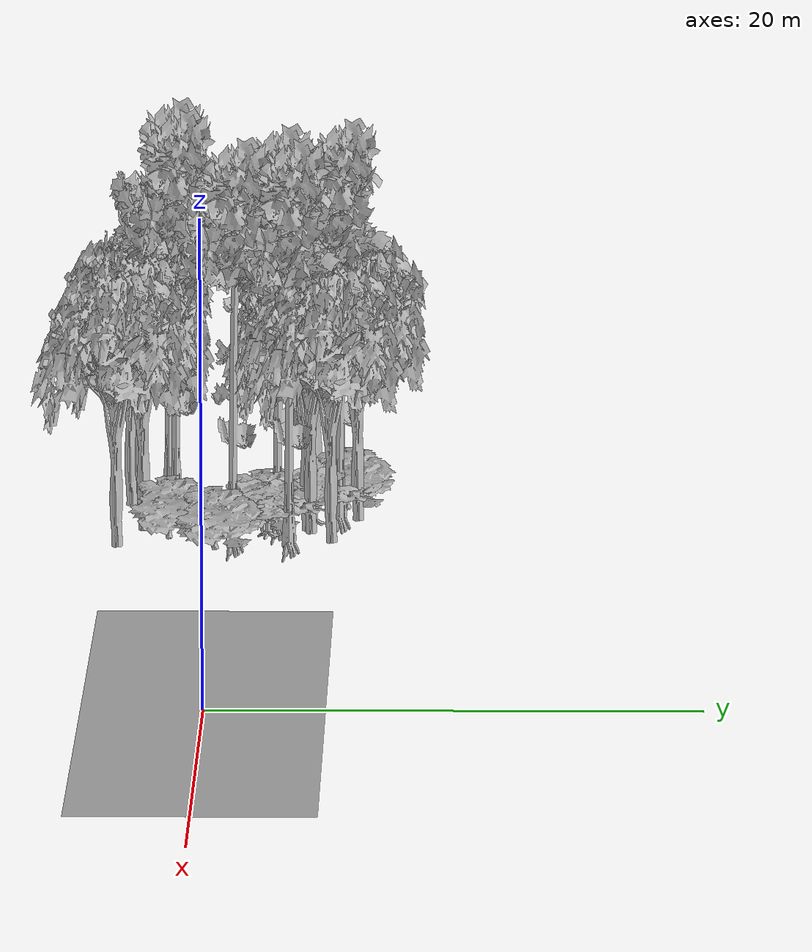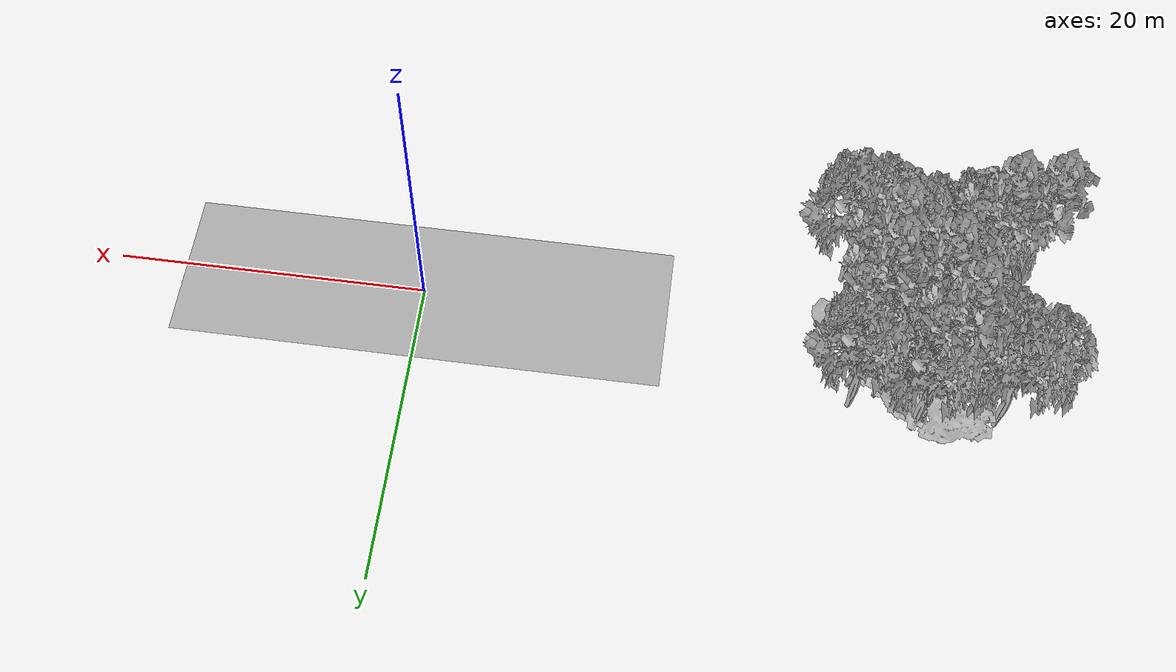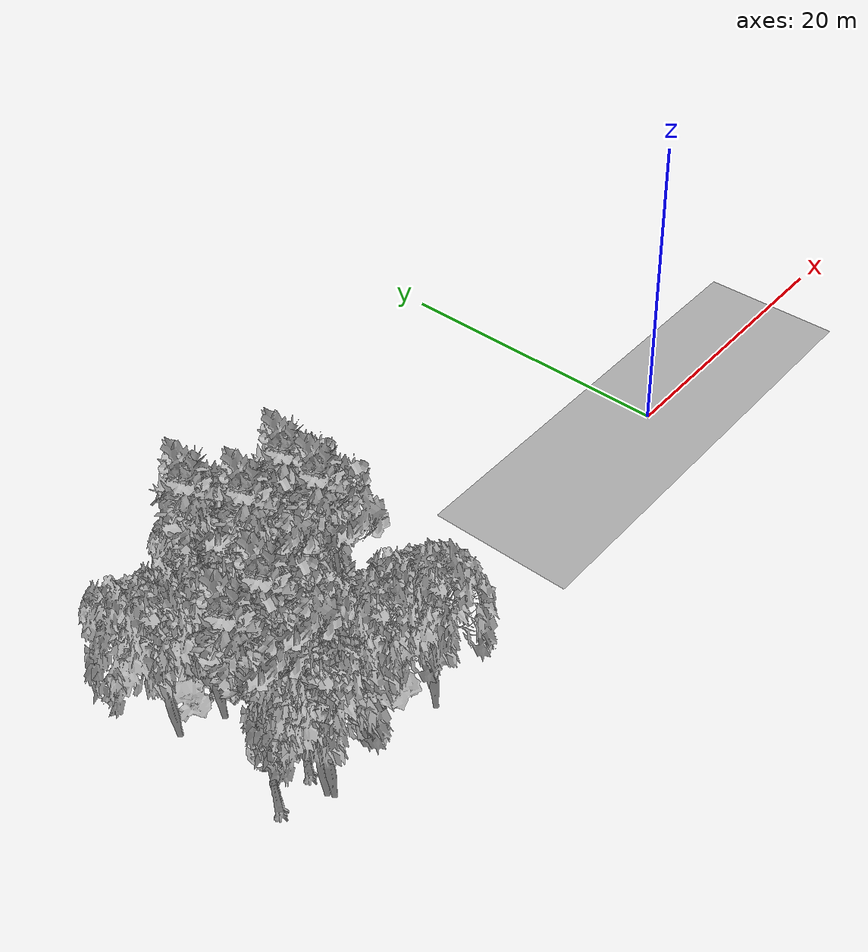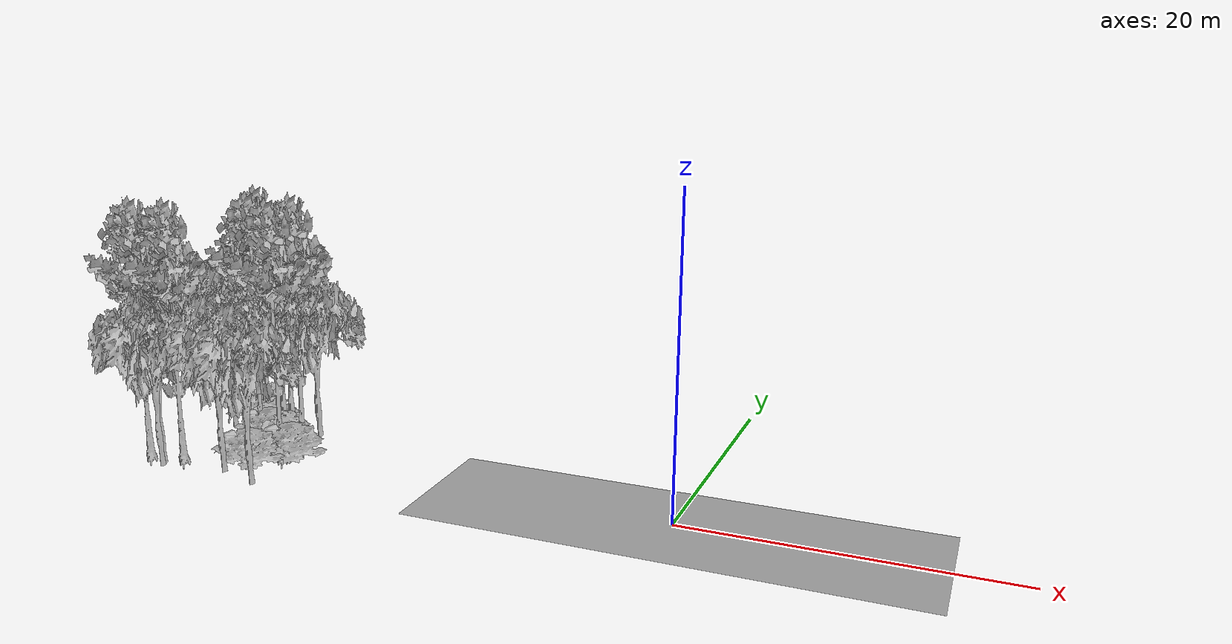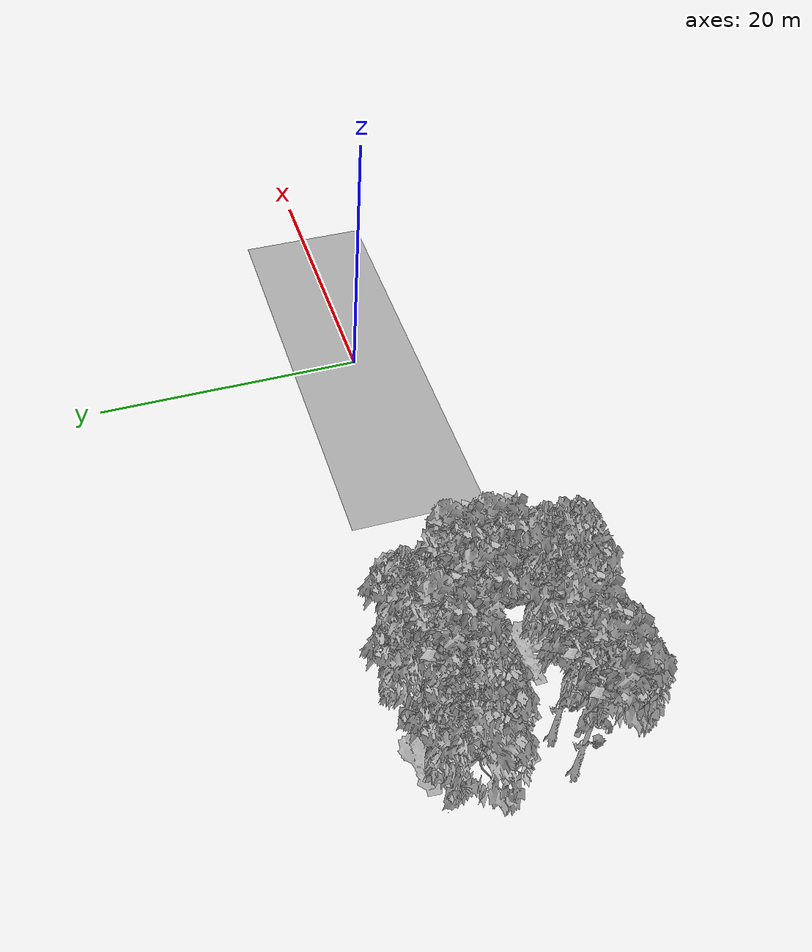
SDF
<sdf version="1.7">
 <world name="default">
  <model name="ground_plane">
   <static>1</static>
   <link name="link">
    <collision name="collision">
     <pose>-50 0 0 0 -0 0</pose>
     <geometry><plane><normal>0 0 1</normal><size>100 100</size></plane></geometry>
     <surface><contact><ode><min_depth>0.01</min_depth><max_vel>0</max_vel></ode></contact></surface>
    </collision>
    <visual name="grass">
     <cast_shadows>0</cast_shadows>
     <geometry>
      <mesh>
       <scale>0.5814285714285714 0.18142857142857144 0.1</scale>
       <uri>file://grass_plane/meshes/grass_plane.dae</uri>
      </mesh>
     </geometry>
    </visual>
   </link>
  </model>
  <model name="Tree 18">
   <static>1</static>
   <pose>-31.97918182394424 4.878873976047316 0 1.57079 -0 0</pose>
   <link name="link">
    <collision name="collision">
     <geometry><mesh><scale>3.5 5 3.5</scale><uri>model://tree_9/meshes/tree_9.obj</uri></mesh></geometry>
    </collision>
    <visual name="visual">
     <geometry><mesh><scale>3.5 5 3.5</scale><uri>model://tree_9/meshes/tree_9.obj</uri></mesh></geometry>
    </visual>
   </link>
  </model>
  <model name="Tree 20">
   <static>1</static>
   <pose>-33.89867738807947 -2.275696835074209 0 1.57079 -0 0</pose>
   <link name="link">
    <collision name="collision">
     <geometry><mesh><scale>3.5 5 3.5</scale><uri>model://tree_9/meshes/tree_9.obj</uri></mesh></geometry>
    </collision>
    <visual name="visual">
     <geometry><mesh><scale>3.5 5 3.5</scale><uri>model://tree_9/meshes/tree_9.obj</uri></mesh></geometry>
    </visual>
   </link>
  </model>
  <model name="Tree 46">
   <static>1</static>
   <pose>-34.12523294498487 -4.231135625825347 0 1.57079 -0 0</pose>
   <link name="link">
    <collision name="collision">
     <geometry><mesh><scale>3.5 5 3.5</scale><uri>model://tree_2/meshes/tree_2.obj</uri></mesh></geometry>
    </collision>
    <visual name="visual">
     <geometry><mesh><scale>3.5 5 3.5</scale><uri>model://tree_2/meshes/tree_2.obj</uri></mesh></geometry>
    </visual>
   </link>
  </model>
  <model name="Tree 48">
   <static>1</static>
   <pose>-36.371641745668114 -2.659059990087165 0 1.57079 -0 0</pose>
   <link name="link">
    <collision name="collision">
     <geometry><mesh><scale>3.5 5 3.5</scale><uri>model://tree_9/meshes/tree_9.obj</uri></mesh></geometry>
    </collision>
    <visual name="visual">
     <geometry><mesh><scale>3.5 5 3.5</scale><uri>model://tree_9/meshes/tree_9.obj</uri></mesh></geometry>
    </visual>
   </link>
  </model>
  <model name="Tree 79">
   <static>1</static>
   <pose>-30.68849110226667 2.2197919262045573 0 1.57079 -0 0</pose>
   <link name="link">
    <collision name="collision">
     <geometry><mesh><scale>3.5 5 3.5</scale><uri>model://tree_9/meshes/tree_9.obj</uri></mesh></geometry>
    </collision>
    <visual name="visual">
     <geometry><mesh><scale>3.5 5 3.5</scale><uri>model://tree_9/meshes/tree_9.obj</uri></mesh></geometry>
    </visual>
   </link>
  </model>
  <model name="Tree 109">
   <static>1</static>
   <pose>-34.242203671761175 3.78068117956677 0 1.57079 -0 0</pose>
   <link name="link">
    <collision name="collision">
     <geometry><mesh><scale>3.5 5 3.5</scale><uri>model://tree_2/meshes/tree_2.obj</uri></mesh></geometry>
    </collision>
    <visual name="visual">
     <geometry><mesh><scale>3.5 5 3.5</scale><uri>model://tree_2/meshes/tree_2.obj</uri></mesh></geometry>
    </visual>
   </link>
  </model>
  <model name="Tree 146">
   <static>1</static>
   <pose>-29.652200562320868 -3.515318487046038 0 1.57079 -0 0</pose>
   <link name="link">
    <collision name="collision">
     <geometry><mesh><scale>3.5 5 3.5</scale><uri>model://tree_2/meshes/tree_2.obj</uri></mesh></geometry>
    </collision>
    <visual name="visual">
     <geometry><mesh><scale>3.5 5 3.5</scale><uri>model://tree_2/meshes/tree_2.obj</uri></mesh></geometry>
    </visual>
   </link>
  </model>
  <model name="Tree 153">
   <static>1</static>
   <pose>-32.77920574154255 3.5441984364658907 0 1.57079 -0 0</pose>
   <link name="link">
    <collision name="collision">
     <geometry><mesh><scale>3.5 5 3.5</scale><uri>model://tree_2/meshes/tree_2.obj</uri></mesh></geometry>
    </collision>
    <visual name="visual">
     <geometry><mesh><scale>3.5 5 3.5</scale><uri>model://tree_2/meshes/tree_2.obj</uri></mesh></geometry>
    </visual>
   </link>
  </model>
  <model name="Tree 169">
   <static>1</static>
   <pose>-27.53523784916139 4.586322737279296 0 1.57079 -0 0</pose>
   <link name="link">
    <collision name="collision">
     <geometry><mesh><scale>3.5 5 3.5</scale><uri>model://tree_2/meshes/tree_2.obj</uri></mesh></geometry>
    </collision>
    <visual name="visual">
     <geometry><mesh><scale>3.5 5 3.5</scale><uri>model://tree_2/meshes/tree_2.obj</uri></mesh></geometry>
    </visual>
   </link>
  </model>
  <model name="Tree 189">
   <static>1</static>
   <pose>-29.658551896655734 3.494378865861357 0 1.57079 -0 0</pose>
   <link name="link">
    <collision name="collision">
     <geometry><mesh><scale>3.5 5 3.5</scale><uri>model://tree_2/meshes/tree_2.obj</uri></mesh></geometry>
    </collision>
    <visual name="visual">
     <geometry><mesh><scale>3.5 5 3.5</scale><uri>model://tree_2/meshes/tree_2.obj</uri></mesh></geometry>
    </visual>
   </link>
  </model>
  <model name="Tree 273">
   <static>1</static>
   <pose>-27.650553399773926 2.778650772689865 0 1.57079 -0 0</pose>
   <link name="link">
    <collision name="collision">
     <geometry><mesh><scale>3.5 5 3.5</scale><uri>model://tree_9/meshes/tree_9.obj</uri></mesh></geometry>
    </collision>
    <visual name="visual">
     <geometry><mesh><scale>3.5 5 3.5</scale><uri>model://tree_9/meshes/tree_9.obj</uri></mesh></geometry>
    </visual>
   </link>
  </model>
  <model name="Tree 359">
   <static>1</static>
   <pose>-28.806923804123702 1.8431877144173505 0 1.57079 -0 0</pose>
   <link name="link">
    <collision name="collision">
     <geometry><mesh><scale>4 2.5 4</scale><uri>model://tree_1/meshes/tree_1.obj</uri></mesh></geometry>
    </collision>
    <visual name="visual">
     <geometry><mesh><scale>4 2.5 4</scale><uri>model://tree_1/meshes/tree_1.obj</uri></mesh></geometry>
    </visual>
   </link>
  </model>
  <model name="Tree 373">
   <static>1</static>
   <pose>-34.28539682134535 -3.855290580414918 0 1.57079 -0 0</pose>
   <link name="link">
    <collision name="collision">
     <geometry><mesh><scale>3.5 5 3.5</scale><uri>model://tree_2/meshes/tree_2.obj</uri></mesh></geometry>
    </collision>
    <visual name="visual">
     <geometry><mesh><scale>3.5 5 3.5</scale><uri>model://tree_2/meshes/tree_2.obj</uri></mesh></geometry>
    </visual>
   </link>
  </model>
  <model name="Tree 396">
   <static>1</static>
   <pose>-29.827838228044175 1.6209083611320736 0 1.57079 -0 0</pose>
   <link name="link">
    <collision name="collision">
     <geometry><mesh><scale>3 2 3</scale><uri>model://tree_3/meshes/tree_3.obj</uri></mesh></geometry>
    </collision>
    <visual name="visual">
     <geometry><mesh><scale>3 2 3</scale><uri>model://tree_3/meshes/tree_3.obj</uri></mesh></geometry>
    </visual>
   </link>
  </model>
  <model name="Tree 422">
   <static>1</static>
   <pose>-36.51567610693521 4.751569150117003 0 1.57079 -0 0</pose>
   <link name="link">
    <collision name="collision">
     <geometry><mesh><scale>3.5 5 3.5</scale><uri>model://tree_2/meshes/tree_2.obj</uri></mesh></geometry>
    </collision>
    <visual name="visual">
     <geometry><mesh><scale>3.5 5 3.5</scale><uri>model://tree_2/meshes/tree_2.obj</uri></mesh></geometry>
    </visual>
   </link>
  </model>
  <model name="Tree 425">
   <static>1</static>
   <pose>-26.722351395366367 -4.563219709453298 0 1.57079 -0 0</pose>
   <link name="link">
    <collision name="collision">
     <geometry><mesh><scale>3.5 5 3.5</scale><uri>model://tree_2/meshes/tree_2.obj</uri></mesh></geometry>
    </collision>
    <visual name="visual">
     <geometry><mesh><scale>3.5 5 3.5</scale><uri>model://tree_2/meshes/tree_2.obj</uri></mesh></geometry>
    </visual>
   </link>
  </model>
  <model name="Tree 431">
   <static>1</static>
   <pose>-31.003865786837522 3.8379180764984824 0 1.57079 -0 0</pose>
   <link name="link">
    <collision name="collision">
     <geometry><mesh><scale>4 2.5 4</scale><uri>model://tree_1/meshes/tree_1.obj</uri></mesh></geometry>
    </collision>
    <visual name="visual">
     <geometry><mesh><scale>4 2.5 4</scale><uri>model://tree_1/meshes/tree_1.obj</uri></mesh></geometry>
    </visual>
   </link>
  </model>
  <model name="Tree 433">
   <static>1</static>
   <pose>-33.858476585402926 5.17179599000497 0 1.57079 -0 0</pose>
   <link name="link">
    <collision name="collision">
     <geometry><mesh><scale>3 2 3</scale><uri>model://tree_3/meshes/tree_3.obj</uri></mesh></geometry>
    </collision>
    <visual name="visual">
     <geometry><mesh><scale>3 2 3</scale><uri>model://tree_3/meshes/tree_3.obj</uri></mesh></geometry>
    </visual>
   </link>
  </model>
  <model name="Tree 434">
   <static>1</static>
   <pose>-28.559299540189908 -2.410037393195788 0 1.57079 -0 0</pose>
   <link name="link">
    <collision name="collision">
     <geometry><mesh><scale>3 2 3</scale><uri>model://tree_3/meshes/tree_3.obj</uri></mesh></geometry>
    </collision>
    <visual name="visual">
     <geometry><mesh><scale>3 2 3</scale><uri>model://tree_3/meshes/tree_3.obj</uri></mesh></geometry>
    </visual>
   </link>
  </model>
  <model name="Tree 447">
   <static>1</static>
   <pose>-27.800449705167942 0.3817559161220778 0 1.57079 -0 0</pose>
   <link name="link">
    <collision name="collision">
     <geometry><mesh><scale>3.5 5 3.5</scale><uri>model://tree_9/meshes/tree_9.obj</uri></mesh></geometry>
    </collision>
    <visual name="visual">
     <geometry><mesh><scale>3.5 5 3.5</scale><uri>model://tree_9/meshes/tree_9.obj</uri></mesh></geometry>
    </visual>
   </link>
  </model>
  <model name="Tree 450">
   <static>1</static>
   <pose>-31.500412250970964 5.6655873128614225 0 1.57079 -0 0</pose>
   <link name="link">
    <collision name="collision">
     <geometry><mesh><scale>3.5 5 3.5</scale><uri>model://tree_2/meshes/tree_2.obj</uri></mesh></geometry>
    </collision>
    <visual name="visual">
     <geometry><mesh><scale>3.5 5 3.5</scale><uri>model://tree_2/meshes/tree_2.obj</uri></mesh></geometry>
    </visual>
   </link>
  </model>
  <model name="Tree 514">
   <static>1</static>
   <pose>-29.144588387337272 3.6814676159646105 0 1.57079 -0 0</pose>
   <link name="link">
    <collision name="collision">
     <geometry><mesh><scale>3.5 5 3.5</scale><uri>model://tree_2/meshes/tree_2.obj</uri></mesh></geometry>
    </collision>
    <visual name="visual">
     <geometry><mesh><scale>3.5 5 3.5</scale><uri>model://tree_2/meshes/tree_2.obj</uri></mesh></geometry>
    </visual>
   </link>
  </model>
  <model name="Tree 536">
   <static>1</static>
   <pose>-26.66657440202017 -0.3764553160944768 0 1.57079 -0 0</pose>
   <link name="link">
    <collision name="collision">
     <geometry><mesh><scale>3 2 3</scale><uri>model://tree_3/meshes/tree_3.obj</uri></mesh></geometry>
    </collision>
    <visual name="visual">
     <geometry><mesh><scale>3 2 3</scale><uri>model://tree_3/meshes/tree_3.obj</uri></mesh></geometry>
    </visual>
   </link>
  </model>
 </world>
</sdf>
